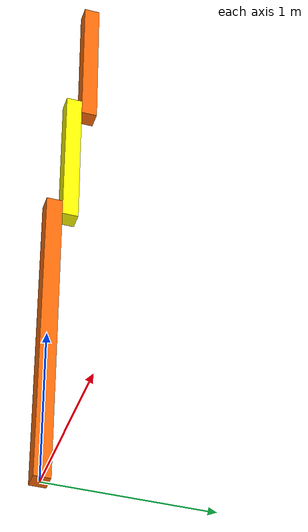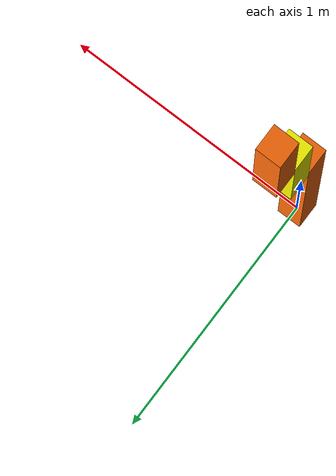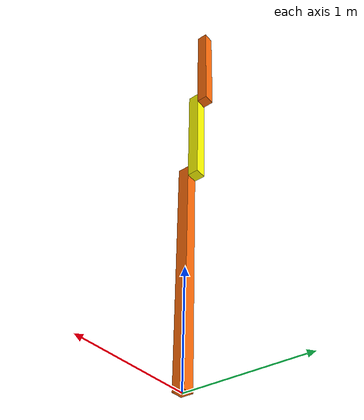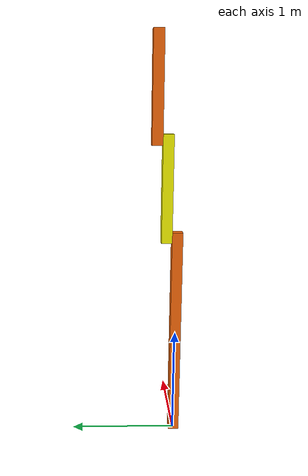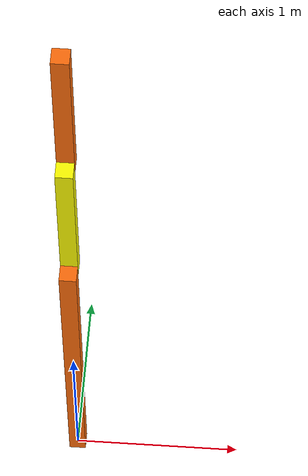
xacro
<?xml version="1.0"?>
<!-- Simple 2-Revolute Arm -->

<!--
Copied and modified from ros2_control Demos -
https://github.com/ros-controls/ros2_control_demos
-->

<robot xmlns:xacro="http://www.ros.org/wiki/xacro" name="2dof_robot">
  <xacro:arg name="prefix" default="" />

  <!-- Import simple_2r_arm macro -->
  <xacro:include filename="$(find simple_2r_arm_description)/urdf/simple_2r_arm_description.urdf.xacro" />

  <!-- Import Rviz colors -->
  <xacro:include filename="$(find simple_2r_arm_description)/gazebo/simple_2r_arm.materials.xacro" />

  <!-- Import simple_2r_arm ros2_control description -->
  <xacro:include filename="$(find simple_2r_arm_description)/ros2_control/simple_2r_arm.ros2_control.xacro" />

  <!-- Used for fixing robot -->
  <link name="world"/>
  <gazebo reference="world">
    <static>true</static>
  </gazebo>

  <xacro:simple_2r_arm parent="world" prefix="$(arg prefix)">
    <origin xyz="0 0 0" rpy="0 0 0" />
  </xacro:simple_2r_arm>

  <xacro:simple_2r_arm_ros2_control
    name="simple_2r_arm" prefix="$(arg prefix)" />

</robot>

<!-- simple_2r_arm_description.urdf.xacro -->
<robot xmlns:xacro="http://www.ros.org/wiki/xacro">

<!--
Copied and modified from ros2_control Demos -
https://github.com/ros-controls/ros2_control_demos
-->

  <xacro:macro name="simple_2r_arm" params="parent prefix *origin">

  <!-- Constants for robot dimensions -->
  <xacro:property name="mass" value="1" /> <!-- arbitrary value for mass -->
  <xacro:property name="width" value="0.1" /> <!-- Square dimensions (widthxwidth) of beams -->
  <xacro:property name="height1" value="2" /> <!-- Link 1 -->
  <xacro:property name="height2" value="1" /> <!-- Link 2 -->
  <xacro:property name="height3" value="1" /> <!-- Link 3 -->
  <xacro:property name="axel_offset" value="0.05" /> <!-- Space btw top of beam and the each joint -->

  <joint name="${prefix}base_joint" type="fixed">
    <xacro:insert_block name="origin" />
    <parent link="${parent}"/>
    <child link="${prefix}base_link" />
  </joint>

  <!-- Base Link -->
  <link name="${prefix}base_link">
    <collision>
      <origin xyz="0 0 ${height1/2}" rpy="0 0 0"/>
      <geometry>
        <box size="${width} ${width} ${height1}"/>
      </geometry>
    </collision>

    <visual>
      <origin xyz="0 0 ${height1/2}" rpy="0 0 0"/>
      <geometry>
        <box size="${width} ${width} ${height1}"/>
      </geometry>
      <material name="orange"/>
    </visual>

    <inertial>
      <origin xyz="0 0 ${height1/2}" rpy="0 0 0"/>
      <mass value="${mass}"/>
      <inertia
        ixx="${mass / 12.0 * (width*width + height1*height1)}" ixy="0.0" ixz="0.0"
        iyy="${mass / 12.0 * (height1*height1 + width*width)}" iyz="0.0"
        izz="${mass / 12.0 * (width*width + width*width)}"/>
      </inertial>
    </link>

    <joint name="${prefix}joint1" type="continuous">
      <parent link="${prefix}base_link"/>
      <child link="${prefix}link1"/>
      <origin xyz="0 ${width} ${height1 - axel_offset}" rpy="0 0 0"/>
      <axis xyz="0 1 0"/>
      <dynamics damping="0.7"/>
    </joint>

    <!-- Middle Link -->
    <link name="${prefix}link1">
      <collision>
        <origin xyz="0 0 ${height2/2 - axel_offset}" rpy="0 0 0"/>
        <geometry>
          <box size="${width} ${width} ${height2}"/>
        </geometry>
      </collision>

      <visual>
        <origin xyz="0 0 ${height2/2 - axel_offset}" rpy="0 0 0"/>
        <geometry>
          <box size="${width} ${width} ${height2}"/>
        </geometry>
        <material name="yellow"/>
      </visual>

      <inertial>
        <origin xyz="0 0 ${height2/2 - axel_offset}" rpy="0 0 0"/>
        <mass value="${mass}"/>
        <inertia
          ixx="${mass / 12.0 * (width*width + height2*height2)}" ixy="0.0" ixz="0.0"
          iyy="${mass / 12.0 * (height2*height2 + width*width)}" iyz="0.0"
          izz="${mass / 12.0 * (width*width + width*width)}"/>
        </inertial>
      </link>

      <joint name="${prefix}joint2" type="continuous">
        <parent link="${prefix}link1"/>
        <child link="${prefix}link2"/>
        <origin xyz="0 ${width} ${height2 - axel_offset*2}" rpy="0 0 0"/>
        <axis xyz="0 1 0"/>
        <dynamics damping="0.7"/>
      </joint>

      <!-- Top Link -->
      <link name="${prefix}link2">
        <collision>
          <origin xyz="0 0 ${height3/2 - axel_offset}" rpy="0 0 0"/>
          <geometry>
            <box size="${width} ${width} ${height3}"/>
          </geometry>
        </collision>

        <visual>
          <origin xyz="0 0 ${height3/2 - axel_offset}" rpy="0 0 0"/>
          <geometry>
            <box size="${width} ${width} ${height3}"/>
          </geometry>
          <material name="orange"/>
        </visual>

        <inertial>
          <origin xyz="0 0 ${height3/2 - axel_offset}" rpy="0 0 0"/>
          <mass value="${mass}"/>
          <inertia
            ixx="${mass / 12.0 * (width*width + height3*height3)}" ixy="0.0" ixz="0.0"
            iyy="${mass / 12.0 * (height3*height3 + width*width)}" iyz="0.0"
            izz="${mass / 12.0 * (width*width + width*width)}"/>
          </inertial>
        </link>

        <joint name="${prefix}tool_joint" type="fixed">
          <origin xyz="0 0 1" rpy="0 0 0" />
          <parent link="${prefix}link2"/>
          <child link="${prefix}tool_link" />
        </joint>

        <!-- Tool Link -->
        <link name="${prefix}tool_link">
        </link>

  </xacro:macro>

</robot>

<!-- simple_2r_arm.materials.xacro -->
<robot>

<!--
Copied and modified from ros2_control Demos -
https://github.com/ros-controls/ros2_control_demos
-->

  <material name="black">
    <color rgba="0.0 0.0 0.0 1.0"/>
  </material>

  <material name="blue">
    <color rgba="0.0 0.0 0.8 1.0"/>
  </material>

  <material name="green">
    <color rgba="0.0 0.8 0.0 1.0"/>
  </material>

  <material name="grey">
    <color rgba="0.2 0.2 0.2 1.0"/>
  </material>

  <material name="orange">
    <color rgba="${255/255} ${108/255} ${10/255} 1.0"/>
  </material>

  <material name="brown">
    <color rgba="${222/255} ${207/255} ${195/255} 1.0"/>
  </material>

  <material name="red">
    <color rgba="0.8 0.0 0.0 1.0"/>
  </material>

  <material name="yellow">
    <color rgba="1.0 1.0 0.0 1.0"/>
  </material>

  <material name="white">
    <color rgba="1.0 1.0 1.0 1.0"/>
  </material>

</robot>
